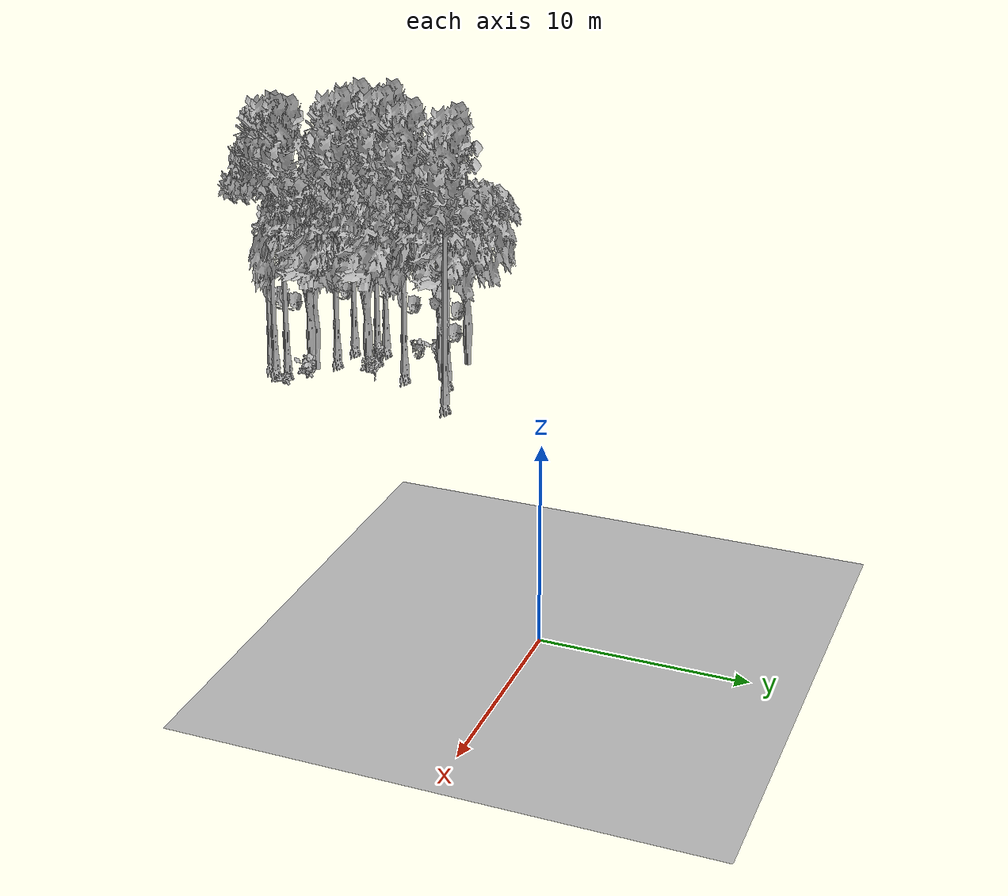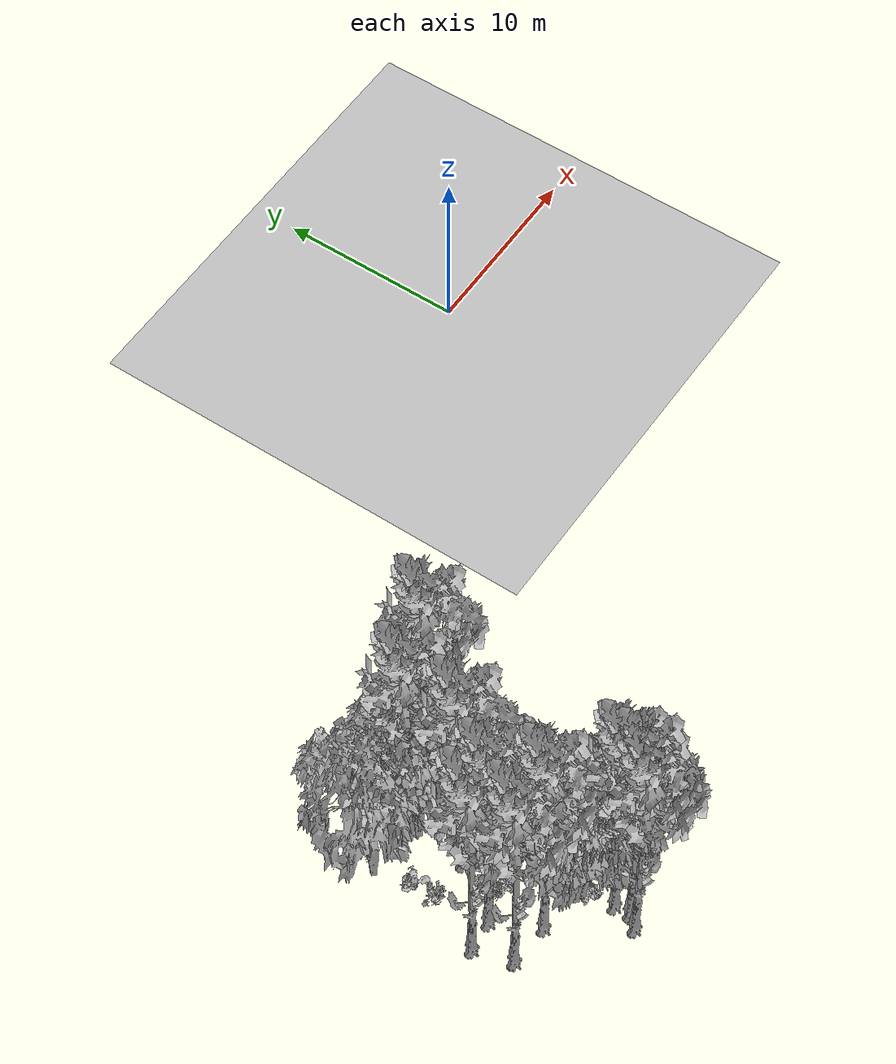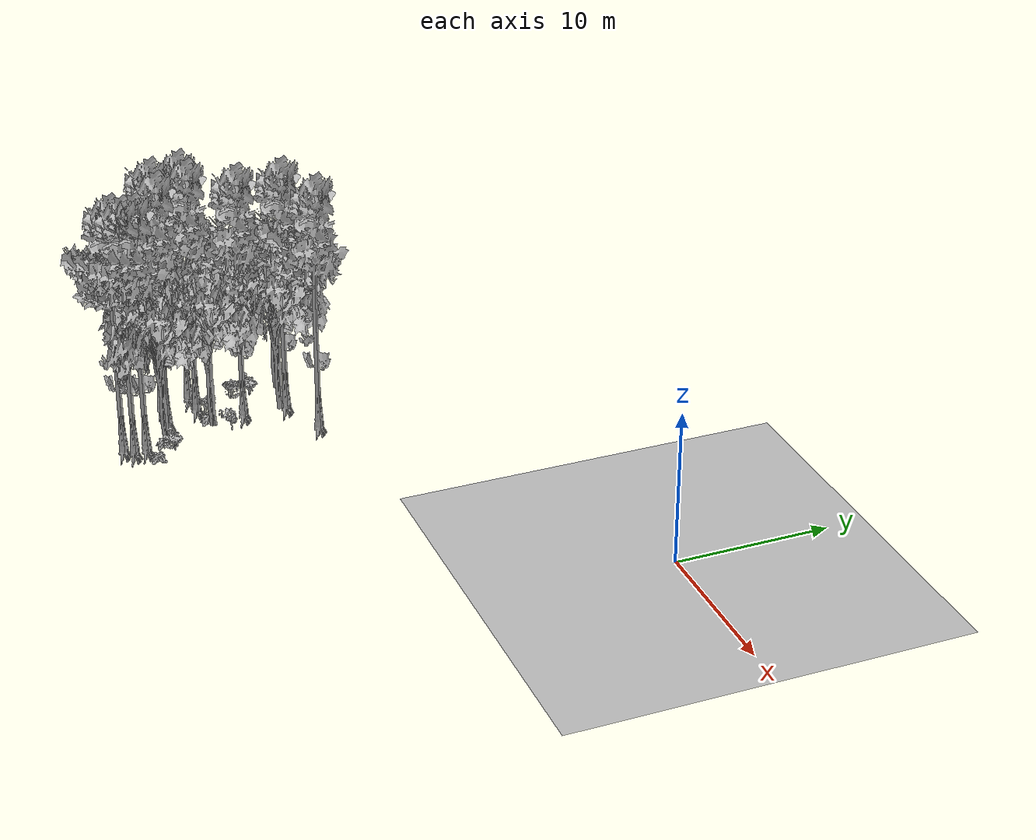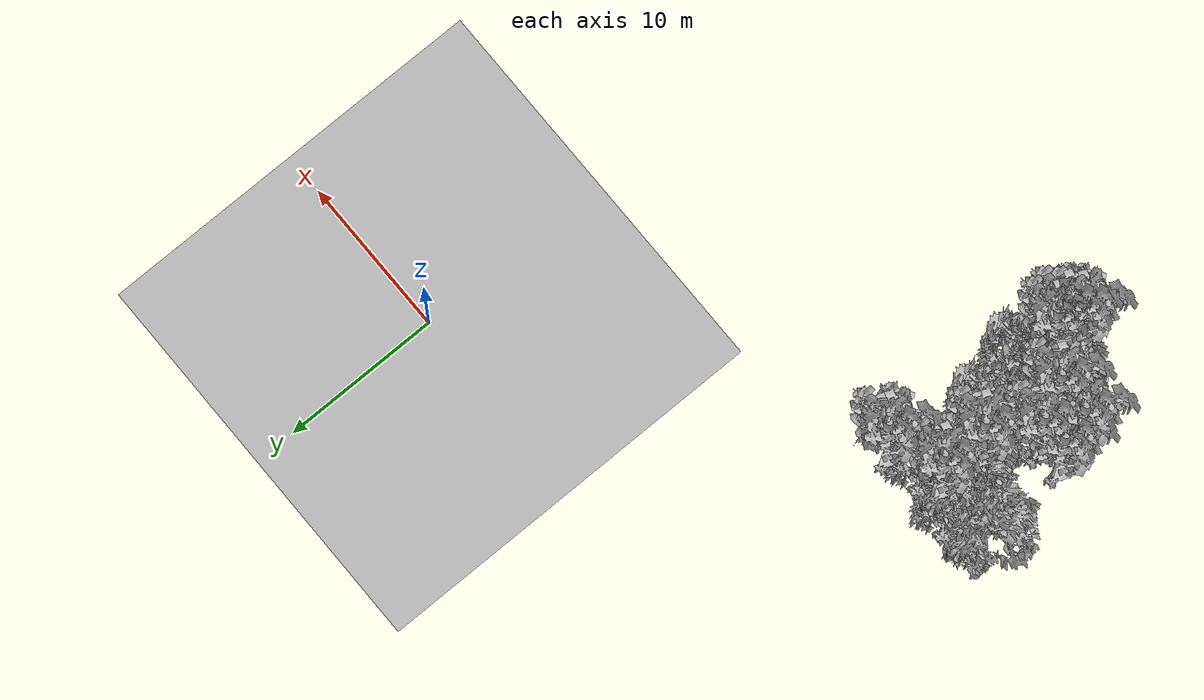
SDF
<sdf version="1.7">
 <world name="default">
  <model name="ground_plane">
   <static>1</static>
   <link name="link">
    <collision name="collision">
     <pose>-50 0 0 0 -0 0</pose>
     <geometry><plane><normal>0 0 1</normal><size>80 80</size></plane></geometry>
     <surface><contact><ode><min_depth>0.01</min_depth><max_vel>0</max_vel></ode></contact></surface>
    </collision>
    <visual name="grass">
     <cast_shadows>0</cast_shadows>
     <geometry>
      <mesh>
       <scale>0.46714285714285714 0.46714285714285714 0.1</scale>
       <uri>file://grass_plane/meshes/grass_plane.dae</uri>
      </mesh>
     </geometry>
    </visual>
   </link>
  </model>
  <model name="Tree 46">
   <static>1</static>
   <pose>-25.7434908257971 -20.81326084526454 0 1.57079 -0 0</pose>
   <link name="link">
    <collision name="collision">
     <geometry><mesh><scale>3.5 5 3.5</scale><uri>model://tree_2/meshes/tree_2.obj</uri></mesh></geometry>
    </collision>
    <visual name="visual">
     <geometry><mesh><scale>3.5 5 3.5</scale><uri>model://tree_2/meshes/tree_2.obj</uri></mesh></geometry>
    </visual>
   </link>
  </model>
  <model name="Tree 60">
   <static>1</static>
   <pose>-26.176602733602913 -18.584963172648568 0 1.57079 -0 0</pose>
   <link name="link">
    <collision name="collision">
     <geometry><mesh><scale>3.5 5 3.5</scale><uri>model://tree_9/meshes/tree_9.obj</uri></mesh></geometry>
    </collision>
    <visual name="visual">
     <geometry><mesh><scale>3.5 5 3.5</scale><uri>model://tree_9/meshes/tree_9.obj</uri></mesh></geometry>
    </visual>
   </link>
  </model>
  <model name="Tree 83">
   <static>1</static>
   <pose>-29.086345352079412 -15.54946855227243 0 1.57079 -0 0</pose>
   <link name="link">
    <collision name="collision">
     <geometry><mesh><scale>3.5 5 3.5</scale><uri>model://tree_2/meshes/tree_2.obj</uri></mesh></geometry>
    </collision>
    <visual name="visual">
     <geometry><mesh><scale>3.5 5 3.5</scale><uri>model://tree_2/meshes/tree_2.obj</uri></mesh></geometry>
    </visual>
   </link>
  </model>
  <model name="Tree 91">
   <static>1</static>
   <pose>-22.88148302173672 -14.493086086501403 0 1.57079 -0 0</pose>
   <link name="link">
    <collision name="collision">
     <geometry><mesh><scale>3.5 5 3.5</scale><uri>model://tree_9/meshes/tree_9.obj</uri></mesh></geometry>
    </collision>
    <visual name="visual">
     <geometry><mesh><scale>3.5 5 3.5</scale><uri>model://tree_9/meshes/tree_9.obj</uri></mesh></geometry>
    </visual>
   </link>
  </model>
  <model name="Tree 108">
   <static>1</static>
   <pose>-26.14022899542806 -15.707746122007311 0 1.57079 -0 0</pose>
   <link name="link">
    <collision name="collision">
     <geometry><mesh><scale>3.5 5 3.5</scale><uri>model://tree_9/meshes/tree_9.obj</uri></mesh></geometry>
    </collision>
    <visual name="visual">
     <geometry><mesh><scale>3.5 5 3.5</scale><uri>model://tree_9/meshes/tree_9.obj</uri></mesh></geometry>
    </visual>
   </link>
  </model>
  <model name="Tree 179">
   <static>1</static>
   <pose>-24.99154499471795 -24.01590787804863 0 1.57079 -0 0</pose>
   <link name="link">
    <collision name="collision">
     <geometry><mesh><scale>3.5 5 3.5</scale><uri>model://tree_2/meshes/tree_2.obj</uri></mesh></geometry>
    </collision>
    <visual name="visual">
     <geometry><mesh><scale>3.5 5 3.5</scale><uri>model://tree_2/meshes/tree_2.obj</uri></mesh></geometry>
    </visual>
   </link>
  </model>
  <model name="Tree 252">
   <static>1</static>
   <pose>-24.513060208226502 -26.96418119407131 0 1.57079 -0 0</pose>
   <link name="link">
    <collision name="collision">
     <geometry><mesh><scale>3.5 5 3.5</scale><uri>model://tree_9/meshes/tree_9.obj</uri></mesh></geometry>
    </collision>
    <visual name="visual">
     <geometry><mesh><scale>3.5 5 3.5</scale><uri>model://tree_9/meshes/tree_9.obj</uri></mesh></geometry>
    </visual>
   </link>
  </model>
  <model name="Tree 259">
   <static>1</static>
   <pose>-24.703157723661207 -24.175542800482255 0 1.57079 -0 0</pose>
   <link name="link">
    <collision name="collision">
     <geometry><mesh><scale>3.5 5 3.5</scale><uri>model://tree_2/meshes/tree_2.obj</uri></mesh></geometry>
    </collision>
    <visual name="visual">
     <geometry><mesh><scale>3.5 5 3.5</scale><uri>model://tree_2/meshes/tree_2.obj</uri></mesh></geometry>
    </visual>
   </link>
  </model>
  <model name="Tree 361">
   <static>1</static>
   <pose>-26.257911869836562 -16.131430023822688 0 1.57079 -0 0</pose>
   <link name="link">
    <collision name="collision">
     <geometry><mesh><scale>3.5 5 3.5</scale><uri>model://tree_2/meshes/tree_2.obj</uri></mesh></geometry>
    </collision>
    <visual name="visual">
     <geometry><mesh><scale>3.5 5 3.5</scale><uri>model://tree_2/meshes/tree_2.obj</uri></mesh></geometry>
    </visual>
   </link>
  </model>
  <model name="Tree 426">
   <static>1</static>
   <pose>-28.007604214011803 -21.256474540302108 0 1.57079 -0 0</pose>
   <link name="link">
    <collision name="collision">
     <geometry><mesh><scale>3.5 5 3.5</scale><uri>model://tree_9/meshes/tree_9.obj</uri></mesh></geometry>
    </collision>
    <visual name="visual">
     <geometry><mesh><scale>3.5 5 3.5</scale><uri>model://tree_9/meshes/tree_9.obj</uri></mesh></geometry>
    </visual>
   </link>
  </model>
  <model name="Tree 447">
   <static>1</static>
   <pose>-24.04593472342616 -25.57932414203868 0 1.57079 -0 0</pose>
   <link name="link">
    <collision name="collision">
     <geometry><mesh><scale>3.5 5 3.5</scale><uri>model://tree_9/meshes/tree_9.obj</uri></mesh></geometry>
    </collision>
    <visual name="visual">
     <geometry><mesh><scale>3.5 5 3.5</scale><uri>model://tree_9/meshes/tree_9.obj</uri></mesh></geometry>
    </visual>
   </link>
  </model>
  <model name="Tree 458">
   <static>1</static>
   <pose>-26.816793679607223 -23.499712461933875 0 1.57079 -0 0</pose>
   <link name="link">
    <collision name="collision">
     <geometry><mesh><scale>3.5 5 3.5</scale><uri>model://tree_9/meshes/tree_9.obj</uri></mesh></geometry>
    </collision>
    <visual name="visual">
     <geometry><mesh><scale>3.5 5 3.5</scale><uri>model://tree_9/meshes/tree_9.obj</uri></mesh></geometry>
    </visual>
   </link>
  </model>
  <model name="Tree 464">
   <static>1</static>
   <pose>-23.97506001833281 -26.37089172178907 0 1.57079 -0 0</pose>
   <link name="link">
    <collision name="collision">
     <geometry><mesh><scale>3.5 5 3.5</scale><uri>model://tree_9/meshes/tree_9.obj</uri></mesh></geometry>
    </collision>
    <visual name="visual">
     <geometry><mesh><scale>3.5 5 3.5</scale><uri>model://tree_9/meshes/tree_9.obj</uri></mesh></geometry>
    </visual>
   </link>
  </model>
  <model name="Tree 488">
   <static>1</static>
   <pose>-28.9996645892751 -23.33081558983328 0 1.57079 -0 0</pose>
   <link name="link">
    <collision name="collision">
     <geometry><mesh><scale>3.5 5 3.5</scale><uri>model://tree_9/meshes/tree_9.obj</uri></mesh></geometry>
    </collision>
    <visual name="visual">
     <geometry><mesh><scale>3.5 5 3.5</scale><uri>model://tree_9/meshes/tree_9.obj</uri></mesh></geometry>
    </visual>
   </link>
  </model>
  <model name="Tree 609">
   <static>1</static>
   <pose>-29.561527921069363 -21.387384924738157 0 1.57079 -0 0</pose>
   <link name="link">
    <collision name="collision">
     <geometry><mesh><scale>3.5 5 3.5</scale><uri>model://tree_9/meshes/tree_9.obj</uri></mesh></geometry>
    </collision>
    <visual name="visual">
     <geometry><mesh><scale>3.5 5 3.5</scale><uri>model://tree_9/meshes/tree_9.obj</uri></mesh></geometry>
    </visual>
   </link>
  </model>
  <model name="Bush 78">
   <static>1</static>
   <pose>-26.178595733131708 -20.9955970568795 0 1.57079 -0 0</pose>
   <link name="link">
    <collision name="collision">
     <geometry><mesh><scale>2 2 2</scale><uri>model://bush_2/meshes/bush_2.obj</uri></mesh></geometry>
     <surface><contact><collide_without_contact>false</collide_without_contact></contact></surface>
    </collision>
    <visual name="visual">
     <geometry><mesh><scale>2 2 2</scale><uri>model://bush_2/meshes/bush_2.obj</uri></mesh></geometry>
    </visual>
   </link>
  </model>
  <model name="Bush 229">
   <static>1</static>
   <pose>-24.50068409914907 -19.85233815971924 0 1.57079 -0 0</pose>
   <link name="link">
    <collision name="collision">
     <geometry><mesh><scale>2 2 2</scale><uri>model://bush_5/meshes/bush_5.obj</uri></mesh></geometry>
     <surface><contact><collide_without_contact>false</collide_without_contact></contact></surface>
    </collision>
    <visual name="visual">
     <geometry><mesh><scale>2 2 2</scale><uri>model://bush_5/meshes/bush_5.obj</uri></mesh></geometry>
    </visual>
   </link>
  </model>
  <model name="Bush 407">
   <static>1</static>
   <pose>-22.738158668983527 -25.194710062442603 0 1.57079 -0 0</pose>
   <link name="link">
    <collision name="collision">
     <geometry><mesh><scale>2 2 2</scale><uri>model://bush_2/meshes/bush_2.obj</uri></mesh></geometry>
     <surface><contact><collide_without_contact>false</collide_without_contact></contact></surface>
    </collision>
    <visual name="visual">
     <geometry><mesh><scale>2 2 2</scale><uri>model://bush_2/meshes/bush_2.obj</uri></mesh></geometry>
    </visual>
   </link>
  </model>
  <model name="Bush 433">
   <static>1</static>
   <pose>-24.322218752821335 -24.400456586560885 0 1.57079 -0 0</pose>
   <link name="link">
    <collision name="collision">
     <geometry><mesh><scale>2 2 2</scale><uri>model://bush_2/meshes/bush_2.obj</uri></mesh></geometry>
     <surface><contact><collide_without_contact>false</collide_without_contact></contact></surface>
    </collision>
    <visual name="visual">
     <geometry><mesh><scale>2 2 2</scale><uri>model://bush_2/meshes/bush_2.obj</uri></mesh></geometry>
    </visual>
   </link>
  </model>
  <model name="Bush 471">
   <static>1</static>
   <pose>-27.051918241210206 -20.841153153871712 0 1.57079 -0 0</pose>
   <link name="link">
    <collision name="collision">
     <geometry><mesh><scale>2 2 2</scale><uri>model://bush_4/meshes/bush_4.obj</uri></mesh></geometry>
     <surface><contact><collide_without_contact>false</collide_without_contact></contact></surface>
    </collision>
    <visual name="visual">
     <geometry><mesh><scale>2 2 2</scale><uri>model://bush_4/meshes/bush_4.obj</uri></mesh></geometry>
    </visual>
   </link>
  </model>
  <model name="Bush 569">
   <static>1</static>
   <pose>-28.610069614850765 -17.49086958545572 0 1.57079 -0 0</pose>
   <link name="link">
    <collision name="collision">
     <geometry><mesh><scale>2 2 2</scale><uri>model://bush_0/meshes/bush_0.obj</uri></mesh></geometry>
     <surface><contact><collide_without_contact>false</collide_without_contact></contact></surface>
    </collision>
    <visual name="visual">
     <geometry><mesh><scale>2 2 2</scale><uri>model://bush_0/meshes/bush_0.obj</uri></mesh></geometry>
    </visual>
   </link>
  </model>
  <model name="Bush 579">
   <static>1</static>
   <pose>-23.40943294148311 -23.90624607145753 0 1.57079 -0 0</pose>
   <link name="link">
    <collision name="collision">
     <geometry><mesh><scale>2 2 2</scale><uri>model://bush_0/meshes/bush_0.obj</uri></mesh></geometry>
     <surface><contact><collide_without_contact>false</collide_without_contact></contact></surface>
    </collision>
    <visual name="visual">
     <geometry><mesh><scale>2 2 2</scale><uri>model://bush_0/meshes/bush_0.obj</uri></mesh></geometry>
    </visual>
   </link>
  </model>
  <model name="Bush 627">
   <static>1</static>
   <pose>-28.653202386498222 -18.76690190767018 0 1.57079 -0 0</pose>
   <link name="link">
    <collision name="collision">
     <geometry><mesh><scale>2 2 2</scale><uri>model://bush_4/meshes/bush_4.obj</uri></mesh></geometry>
     <surface><contact><collide_without_contact>false</collide_without_contact></contact></surface>
    </collision>
    <visual name="visual">
     <geometry><mesh><scale>2 2 2</scale><uri>model://bush_4/meshes/bush_4.obj</uri></mesh></geometry>
    </visual>
   </link>
  </model>
 </world>
</sdf>
